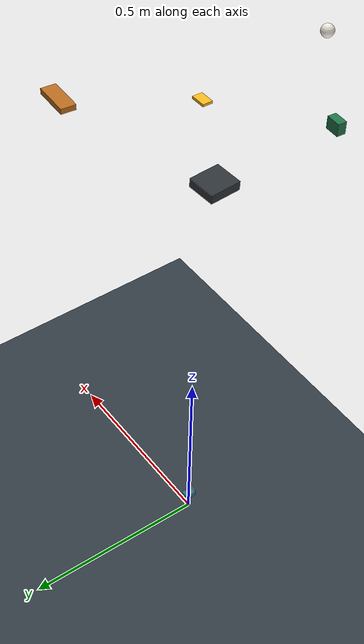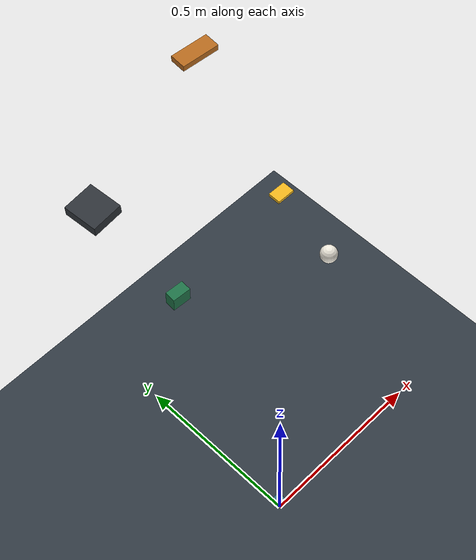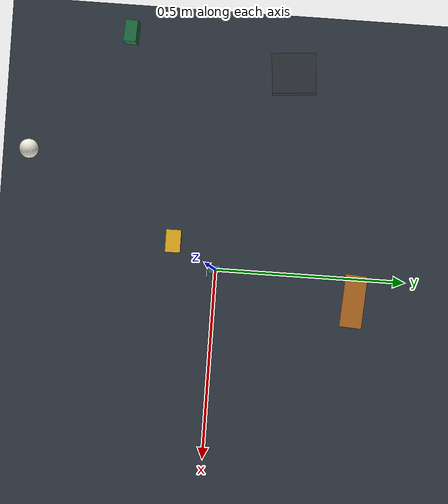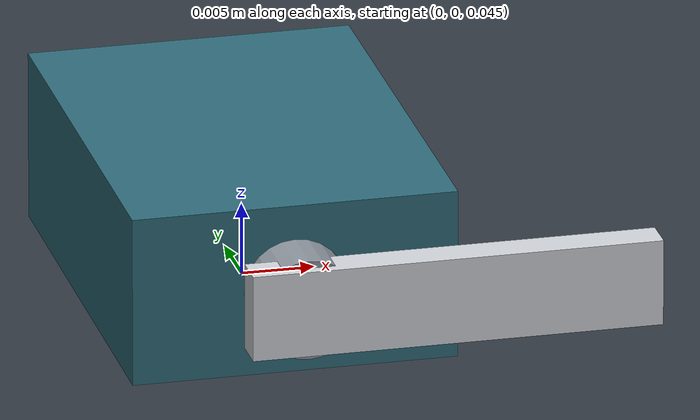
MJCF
<mujoco model="odc_drop">
  <compiler angle="radian" coordinate="local"/>
  <option timestep="0.001" gravity="0 0 -9.81" integrator="implicitfast" iterations="50"/>

  <visual>
    <rgba haze="0.12 0.16 0.22 1"/>
    <quality shadowsize="2048"/>
  </visual>

  <asset>
    <texture name="grid" type="2d" builtin="checker" rgb1="0.22 0.26 0.30" rgb2="0.16 0.19 0.22" width="512" height="512"/>
    <material name="floor" texture="grid" texrepeat="8 8" reflectance="0.1"/>
    <material name="odc" rgba="0.95 0.72 0.12 1" specular="0.4" shininess="0.6"/>
    <material name="battery_holder" rgba="0.18 0.20 0.22 1" specular="0.3" shininess="0.35"/>
    <material name="ut_longhorn" rgba="0.72 0.42 0.12 1" specular="0.35" shininess="0.4"/>
    <material name="ping_pong_ball" rgba="0.95 0.93 0.88 1" specular="0.45" shininess="0.55"/>
    <material name="rj45_breakout" rgba="0.12 0.45 0.28 1" specular="0.3" shininess="0.35"/>
  </asset>

  <default>
    <!-- Sliding friction modest; spinning/rolling tiny (default MuJoCo triad). -->
    <geom friction="0.4 0.005 0.0001" condim="3"/>
  </default>

  <worldbody>
    <light name="key" directional="true" diffuse="0.7 0.7 0.65" specular="0.25 0.25 0.2" pos="1 1 4" dir="-0.3 -0.3 -1"/>
    <light name="fill" directional="true" diffuse="0.25 0.28 0.32" pos="-2 1 3" dir="0.4 -0.2 -1" castshadow="false"/>

    <!-- Large plane floor (MuJoCo treats plane size 0 as infinite extent). -->
    <geom name="floor" type="plane" size="0 0 0.05" material="floor" pos="0 0 0"
          solref="0.012 0.25" solimp="0.9 0.95 0.001 0.5 2" priority="0"/>

    <body name="odc" pos="0 0 1.4" euler="0.035 0.02 0">
      <freejoint name="odc_free"/>
      <!-- ~45 g PCB; thin-plate diaginertia for the Fusion-scaled box about COM. -->
      <inertial pos="0 0 0" mass="0.045" diaginertia="2.490e-6 5.420e-6 7.617e-6"/>
      <geom name="odc_box" type="box" size="0.01875 0.0125 0.003125" material="odc" priority="1"
            solref="0.012 0.25" solimp="0.9 0.95 0.001 0.5 2"/>
    </body>

    <body name="battery_holder_4aa" pos="-0.28 0.18 1.45" euler="0.03 -0.025 0.08">
      <freejoint name="battery_holder_4aa_free"/>
      <inertial pos="0 0 0" mass="0.110" diaginertia="4.978272e-5 4.196915e-5 8.408483e-5"/>
      <geom name="battery_holder_4aa_box" type="box" size="0.03225 0.0354 0.010225"
            material="battery_holder" priority="1"
            solref="0.012 0.25" solimp="0.9 0.95 0.001 0.5 2"/>
    </body>

    <body name="ut_longhorn" pos="0.08 0.30 1.48" euler="0.04 0.015 -0.06">
      <freejoint name="ut_longhorn_free"/>
      <inertial pos="0 0 0" mass="0.055" diaginertia="6.380812e-6 3.313163e-5 3.803395e-5"/>
      <geom name="ut_longhorn_box" type="box" size="0.042034 0.017542 0.00635"
            material="ut_longhorn" priority="1"
            solref="0.012 0.25" solimp="0.9 0.95 0.001 0.5 2"/>
    </body>

    <body name="ping_pong_ball" pos="-0.12 -0.22 1.55" euler="0.02 -0.01 0.05">
      <freejoint name="ping_pong_ball_free"/>
      <inertial pos="0 0 0" mass="0.0027" diaginertia="4.05e-7 4.05e-7 4.05e-7"/>
      <geom name="ping_pong_ball_sphere" type="sphere" size="0.015"
            material="ping_pong_ball" priority="1"
            friction="0.25 0.004 0.0001"
            solref="0.014 0.12" solimp="0.9 0.95 0.001 0.5 2"/>
    </body>

    <!--
      Hat temporarily removed from the lab scene (CAD visual wrong).
      Fragment kept at models/hat/hat.xml for later restore.
    -->

    <body name="rj45_breakout_v8" pos="-0.32 -0.08 1.50" euler="0.04 0.02 -0.05">
      <freejoint name="rj45_breakout_v8_free"/>
      <inertial pos="0 0 0" mass="0.0072" diaginertia="7.092015e-7 1.164000e-6 9.324015e-7"/>
      <geom name="rj45_breakout_v8_box" type="box" size="0.017 0.009975 0.014"
            material="rj45_breakout" priority="1"
            solref="0.012 0.25" solimp="0.9 0.95 0.001 0.5 2"/>
    </body>
  </worldbody>
  <include file="sg90.xml"/>
</mujoco>

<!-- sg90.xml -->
<mujoco model="sg90">
  <compiler angle="radian" coordinate="local" autolimits="true"/>
  <option timestep="0.001" gravity="0 0 -9.81" integrator="implicitfast" iterations="50"/>

  <default>
    <default class="sg90">
      <!--
        damping: calibrated approx τ_stall/ω_nl = 0.15/10.47 (PARAMS.md)
        armature: assumption — numerical stability only
      -->
      <joint limited="true" damping="0.01432" armature="1e-6" frictionloss="0"/>
      <position kp="3" kv="0.01" forcerange="-0.15 0.15" ctrlrange="-1.5708 1.5708"/>
      <geom friction="0.6 0.01 0.001" condim="3" density="0"/>
    </default>
  </default>

  <asset>
    <material name="sg90_housing" rgba="0.18 0.42 0.48 1" specular="0.25" shininess="0.35"/>
    <material name="sg90_horn" rgba="0.82 0.84 0.86 1" specular="0.4" shininess="0.5"/>
    <material name="sg90_hub" rgba="0.55 0.58 0.62 1" specular="0.35" shininess="0.4"/>
  </asset>

  <worldbody>
    <body name="sg90" childclass="sg90" pos="0 0 0.05" euler="1.5708 0 0">
      <inertial pos="0 0 0" mass="0.009" diaginertia="8.252e-7 1.090e-6 4.741e-7"/>
      <geom name="sg90_housing" type="box" size="0.0111 0.0059 0.0155"
            material="sg90_housing" priority="1"/>

      <!-- Output shaft at top face (+Z local). Travel ±90° per datasheet. -->
      <body name="sg90_rotor" pos="0 0 0.0155">
        <joint name="sg90_joint" type="hinge" axis="0 0 1" range="-1.5708 1.5708"/>
        <!-- Horn mass/inertia: assumption (PARAMS.md) — not datasheet-split. -->
        <inertial pos="0.01 0 0.002" mass="0.0005" diaginertia="2.0e-9 4.5e-8 4.5e-8"/>
        <geom name="sg90_hub" type="cylinder" size="0.0035 0.002" pos="0 0 0.002"
              material="sg90_hub"/>
        <geom name="sg90_horn" type="box" size="0.014 0.003 0.0012" pos="0.01 0 0.0035"
              material="sg90_horn"/>
      </body>
    </body>
  </worldbody>

  <actuator>
    <position name="sg90" joint="sg90_joint" class="sg90"/>
  </actuator>
</mujoco>
